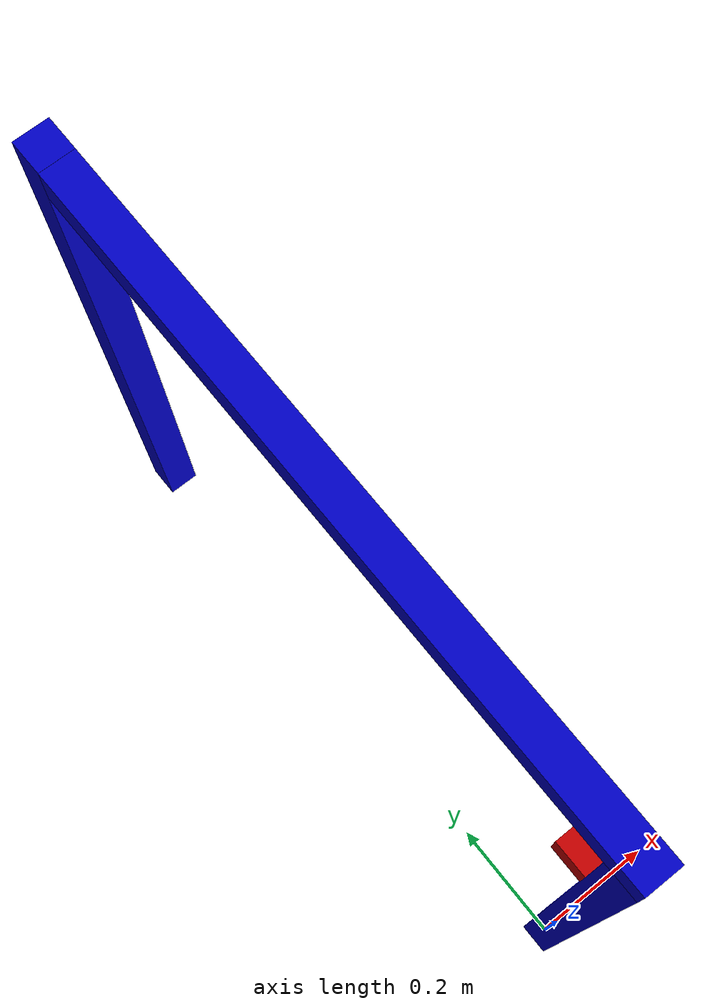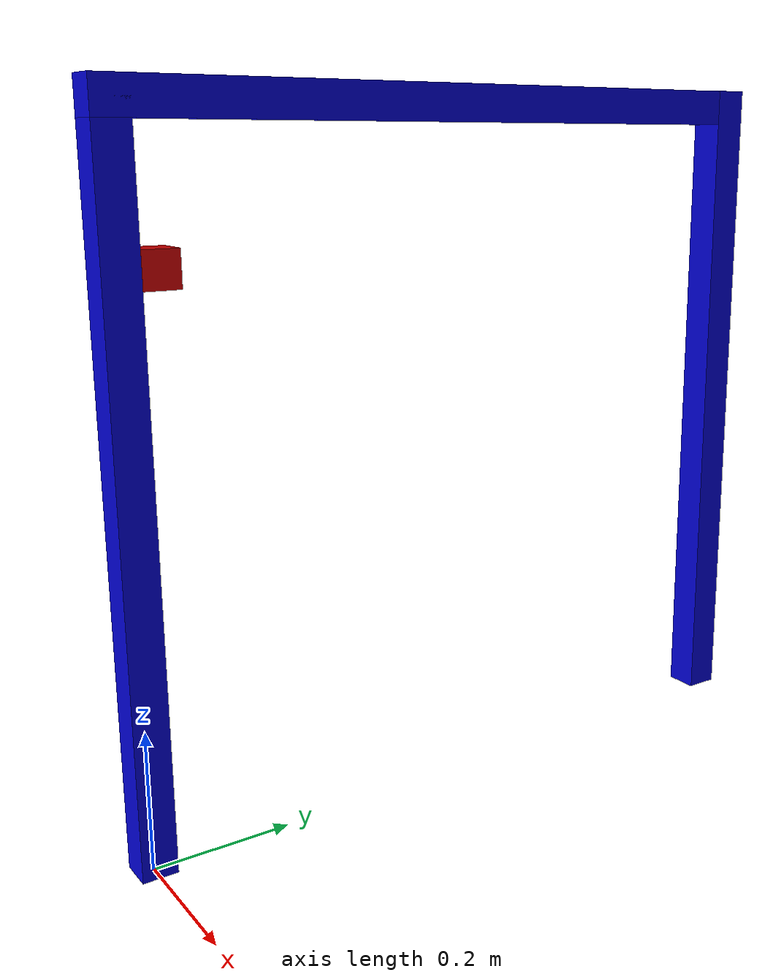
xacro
<?xml version="1.0" encoding="utf-8"?>

<robot name="camera" xmlns:xacro="http://www.ros.org/wiki/xacro">

    <xacro:include filename="$(find conveyor)/urdf/common_properties.xacro"/>
    <xacro:property name="camera_link" value="0.05" /> <!-- Size of square 'camera' box -->

    <link name="world" />

    <joint name="world_camera" type="fixed">
		<parent link="world"/>
		<child link="left_link"/>
		<origin xyz="0.0 0.0 0.5" rpy="0.0 0.0 0"/>
	</joint>

    <link name="left_link">
        <visual>
            <origin rpy="0 0 0" xyz="0 0 0"/>
            <geometry>
                <box size="0.05 0.05 1"/>
            </geometry>
            <material name="blue"/>
        </visual>
        <collision>
            <origin rpy="0 0 0" xyz="0 0 0"/>
            <geometry>
                <box size="0.05 0.05 1"/>
            </geometry>
		</collision>
        <xacro:inertial_box mass="5" x="0.05" y="0.05" z="1">
            <origin xyz="0 0 0" rpy="0 0 0"/>
        </xacro:inertial_box>
    </link>

    <joint name="left_link__top_link" type="fixed">
        <axis xyz="0 0 0" />
        <limit effort="1000.0" lower="-3.14" upper="3.14" velocity="0.5" />
        <origin rpy="0 0 0" xyz="0 0 0.5"/>
        <parent link="left_link"/>
        <child link="top_link"/>
    </joint>

    <link name="top_link">
        <visual>
            <origin rpy="1.57 0 0" xyz="0 0.475 0"/>
            <geometry>
                <box size="0.05 0.05 1"/>
            </geometry>
            <material name="blue"/>
        </visual>
        <collision>
            <origin rpy="1.57 0 0" xyz="0 0.475 0"/>
            <geometry>
                <box size="0.05 0.05 1"/>
            </geometry>
        </collision>
        <xacro:inertial_box mass="5" x="0.05" y="0.05" z="1">
            <origin xyz="1.57 0 0" rpy="0 0.475 0"/>
        </xacro:inertial_box>
    </link>

    <joint name="top_link__right_link" type="fixed">
        <axis xyz="0 0 0" />
        <limit effort="1000.0" lower="-3.14" upper="3.14" velocity="0.5" />
        <origin rpy="0 0 0" xyz="0 1 0"/>
        <parent link="top_link"/>
        <child link="right_link"/>
    </joint>

    <link name="right_link">
        <visual>
            <origin rpy="0 0 0" xyz="0 0 -0.475"/>
            <geometry>
                <box size="0.05 0.05 1"/>
            </geometry>
            <material name="blue"/>
        </visual>
        <collision>
            <origin rpy="0 0 0" xyz="0 0 -0.475"/>
            <geometry>
                <box size="0.05 0.05 1"/>
            </geometry>
        </collision>
        <xacro:inertial_box mass="5" x="0.05" y="0.05" z="1">
            <origin xyz="0 0 -0.475" rpy="0 0 0"/>
        </xacro:inertial_box>
    </link>

    <!-- Camera -->
    <joint name="left_camera_joint" type="fixed">
        <axis xyz="0 0 0" />
        <origin xyz="0 0.05 0.3" rpy="0 0 1.57"/>
        <parent link="left_link"/>
        <child link="left_camera_frame"/>
    </joint>

    <joint name="left_camera_optical_joint" type="fixed">
        <axis xyz="0 0 0" />
        <origin xyz="0 0 0" rpy="${-pi/2} 0 ${-pi/2}"/>
        <parent link="left_camera_frame"/>
        <child link="left_camera_frame_optical"/>
    </joint>

    <link name="left_camera_frame_optical"/>

    <link name="left_camera_frame">
        <collision>
            <origin xyz="0 0 0" rpy="0 0 0"/>
            <geometry>
                <box size="${camera_link} ${camera_link} ${camera_link}"/>
            </geometry>
        </collision>
        <visual>
            <origin xyz="0 0 0" rpy="0 0 0"/>
            <geometry>
                <box size="${camera_link} ${camera_link} ${camera_link}"/>
            </geometry>
            <material name="red"/>
        </visual>
        <xacro:inertial_box mass="0.2" x="${camera_link}" y="${camera_link}" z="${camera_link}">
            <origin xyz="0 0 0" rpy="0 0 0"/>
        </xacro:inertial_box>
    </link>

    <gazebo reference="left_camera_frame">
        <sensor type="camera" name="camera_left">
            <pose> 0 0 0 0 0 0 </pose>
          <update_rate>30.0</update_rate>
          <camera name="camera_left">
            <horizontal_fov>0.69</horizontal_fov>
            <image>
              <width>800</width>
              <height>800</height>
              <format>R8G8B8</format>
            </image>
            <clip>
              <near>0.02</near>
              <far>10</far>
            </clip>
            <noise>
              <type>gaussian</type>
              <mean>0.0</mean>
              <stddev>0.007</stddev>
            </noise>
          </camera>

          <plugin name="camera_controller" filename="libgazebo_ros_camera.so">
            <alwaysOn>true</alwaysOn>
            <visualize>true</visualize>
            <updateRate>0.0</updateRate>
            <cameraName>camera_left</cameraName>
            <imageTopicName>image_raw</imageTopicName>
            <cameraInfoTopicName>camera_info</cameraInfoTopicName>
            <frameName>left_camera_frame_optical</frameName>
            <hackBaseline>0.07</hackBaseline>
            <distortionK1>0.0</distortionK1>
            <distortionK2>0.0</distortionK2>
            <distortionK3>0.0</distortionK3>
            <distortionT1>0.0</distortionT1>
            <distortionT2>0.0</distortionT2>
          </plugin>
        </sensor>
    </gazebo>

  <gazebo reference="left_link">
      <material>Gazebo/Grey</material>
  </gazebo>

  <gazebo reference="right_link">
      <material>Gazebo/Grey</material>
  </gazebo>

  <gazebo reference="top_link">
      <material>Gazebo/Grey</material>
  </gazebo>

    <gazebo reference="left_camera_frame">
      <material>Gazebo/Blue</material>
  </gazebo>
</robot>

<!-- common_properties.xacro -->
<robot name="xacro_properties" xmlns:xacro="http://ros.org/wiki/xacro">
  <xacro:include filename="$(find conveyor)/urdf/inertial_macros.xacro"/>
  <!-- Init colour -->
  <material name="black">
      <color rgba="0.0 0.0 0.0 1.0"/>
  </material>

  <material name="dark">
    <color rgba="0.3 0.3 0.3 1.0"/>
  </material>
  <material name="light_black">
    <color rgba="0.4 0.4 0.4 1.0"/>
  </material>

  <material name="blue">
    <color rgba="0.0 0.0 0.8 1.0"/>
  </material>

  <material name="green">
    <color rgba="0.0 0.8 0.0 1.0"/>
  </material>

  <material name="grey">
    <color rgba="0.5 0.5 0.5 1.0"/>
  </material>

  <material name="orange">
    <color rgba="${255/255} ${108/255} ${10/255} 1.0"/>
  </material>

  <material name="brown">
    <color rgba="${222/255} ${207/255} ${195/255} 1.0"/>
  </material>

  <material name="red">
    <color rgba="0.8 0.0 0.0 1.0"/>
  </material>

  <material name="white">
    <color rgba="1.0 1.0 1.0 1.0"/>
  </material>

</robot>
